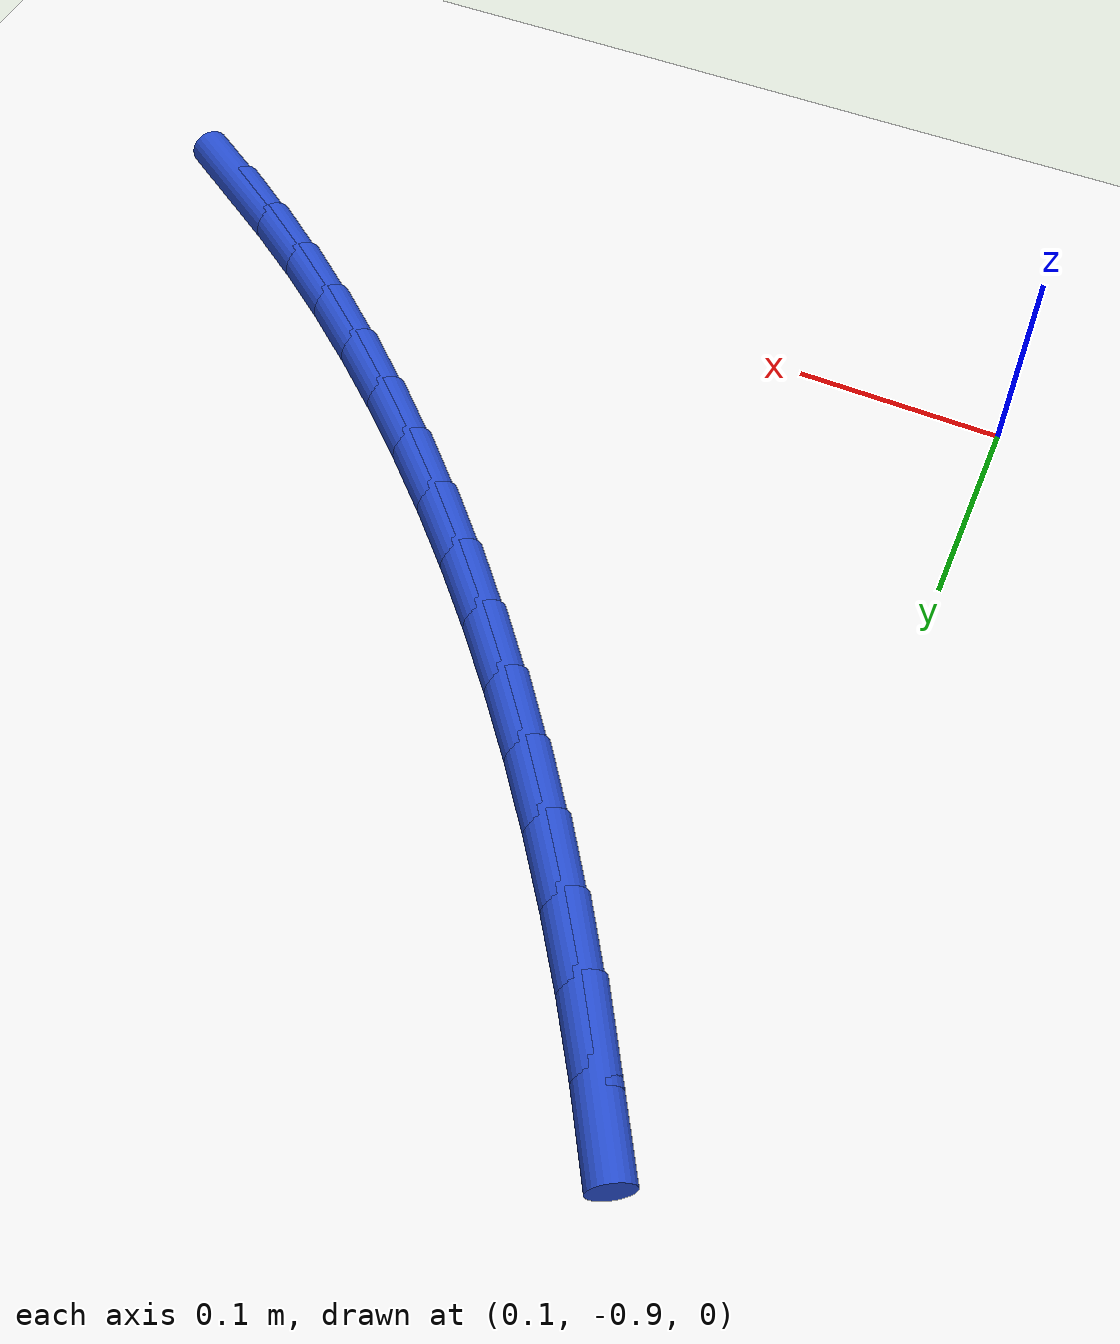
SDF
<sdf version="1.6">
 <world name="default">
  <model name="ground_plane">
   <static>1</static>
   <link name="link">
    <collision name="collision">
     <geometry><plane><normal>0 0 1</normal><size>100 100</size></plane></geometry>
     <surface><friction><ode><mu>100</mu><mu2>50</mu2></ode></friction></surface>
    </collision>
    <visual name="visual">
     <cast_shadows>0</cast_shadows>
     <geometry><plane><normal>0 0 1</normal><size>100 100</size></plane></geometry>
     <material>
      <script><uri>file://media/materials/scripts/gazebo.material</uri><name>Gazebo/WhiteGlow</name></script>
     </material>
    </visual>
   </link>
  </model>
  <model name="line">
   <link name="link_169">
    <pose>0.5124418676224222 -0.8979811106044088 0.01 0 1.57 -0.5719689835825955</pose>
    <collision name="collision">
     <geometry><cylinder><radius>0.01</radius><length>0.08</length></cylinder></geometry>
    </collision>
    <visual name="visual">
     <material>
      <script><name>Gazebo/Blue</name><uri>file://media/materials/scripts/gazebo.material</uri></script>
     </material>
     <geometry><cylinder><radius>0.01</radius><length>0.08</length></cylinder></geometry>
    </visual>
   </link>
   <link name="link_170">
    <pose>0.4836759191741295 -0.8794630316423334 0.01 0 1.57 -0.6081152345805808</pose>
    <collision name="collision">
     <geometry><cylinder><radius>0.01</radius><length>0.08</length></cylinder></geometry>
    </collision>
    <visual name="visual">
     <material>
      <script><name>Gazebo/Blue</name><uri>file://media/materials/scripts/gazebo.material</uri></script>
     </material>
     <geometry><cylinder><radius>0.01</radius><length>0.08</length></cylinder></geometry>
    </visual>
   </link>
   <link name="link_171">
    <pose>0.4554651249755601 -0.8598250154016125 0.01 0 1.57 -0.6430951962035366</pose>
    <collision name="collision">
     <geometry><cylinder><radius>0.01</radius><length>0.08</length></cylinder></geometry>
    </collision>
    <visual name="visual">
     <material>
      <script><name>Gazebo/Blue</name><uri>file://media/materials/scripts/gazebo.material</uri></script>
     </material>
     <geometry><cylinder><radius>0.01</radius><length>0.08</length></cylinder></geometry>
    </visual>
   </link>
   <link name="link_172">
    <pose>0.42783473162028207 -0.8391197393098186 0.01 0 1.57 -0.6769945499991343</pose>
    <collision name="collision">
     <geometry><cylinder><radius>0.01</radius><length>0.08</length></cylinder></geometry>
    </collision>
    <visual name="visual">
     <material>
      <script><name>Gazebo/Blue</name><uri>file://media/materials/scripts/gazebo.material</uri></script>
     </material>
     <geometry><cylinder><radius>0.01</radius><length>0.08</length></cylinder></geometry>
    </visual>
   </link>
   <link name="link_173">
    <pose>0.4008099857018636 -0.8173998807945251 0.01 0 1.57 -0.7099017471498942</pose>
    <collision name="collision">
     <geometry><cylinder><radius>0.01</radius><length>0.08</length></cylinder></geometry>
    </collision>
    <visual name="visual">
     <material>
      <script><name>Gazebo/Blue</name><uri>file://media/materials/scripts/gazebo.material</uri></script>
     </material>
     <geometry><cylinder><radius>0.01</radius><length>0.08</length></cylinder></geometry>
    </visual>
   </link>
   <link name="link_174">
    <pose>0.37441613381387323 -0.7947181172833057 0.01 0 1.57 -0.7419069217221582</pose>
    <collision name="collision">
     <geometry><cylinder><radius>0.01</radius><length>0.08</length></cylinder></geometry>
    </collision>
    <visual name="visual">
     <material>
      <script><name>Gazebo/Blue</name><uri>file://media/materials/scripts/gazebo.material</uri></script>
     </material>
     <geometry><cylinder><radius>0.01</radius><length>0.08</length></cylinder></geometry>
    </visual>
   </link>
   <link name="link_175">
    <pose>0.3486784225498792 -0.7711271262037327 0.01 0 1.57 -0.7731011006079083</pose>
    <collision name="collision">
     <geometry><cylinder><radius>0.01</radius><length>0.08</length></cylinder></geometry>
    </collision>
    <visual name="visual">
     <material>
      <script><name>Gazebo/Blue</name><uri>file://media/materials/scripts/gazebo.material</uri></script>
     </material>
     <geometry><cylinder><radius>0.01</radius><length>0.08</length></cylinder></geometry>
    </visual>
   </link>
   <link name="link_176">
    <pose>0.3236220985034499 -0.7466795849833804 0.01 0 1.57 -0.8035756696206334</pose>
    <collision name="collision">
     <geometry><cylinder><radius>0.01</radius><length>0.08</length></cylinder></geometry>
    </collision>
    <visual name="visual">
     <material>
      <script><name>Gazebo/Blue</name><uri>file://media/materials/scripts/gazebo.material</uri></script>
     </material>
     <geometry><cylinder><radius>0.01</radius><length>0.08</length></cylinder></geometry>
    </visual>
   </link>
   <link name="link_177">
    <pose>0.2992724082681537 -0.7214281710498213 0.01 0 1.57 -0.8334220576419206</pose>
    <collision name="collision">
     <geometry><cylinder><radius>0.01</radius><length>0.08</length></cylinder></geometry>
    </collision>
    <visual name="visual">
     <material>
      <script><name>Gazebo/Blue</name><uri>file://media/materials/scripts/gazebo.material</uri></script>
     </material>
     <geometry><cylinder><radius>0.01</radius><length>0.08</length></cylinder></geometry>
    </visual>
   </link>
   <link name="link_178">
    <pose>0.275654598437559 -0.6954255618306286 0.01 0 1.57 -0.8627316046489398</pose>
    <collision name="collision">
     <geometry><cylinder><radius>0.01</radius><length>0.08</length></cylinder></geometry>
    </collision>
    <visual name="visual">
     <material>
      <script><name>Gazebo/Blue</name><uri>file://media/materials/scripts/gazebo.material</uri></script>
     </material>
     <geometry><cylinder><radius>0.01</radius><length>0.08</length></cylinder></geometry>
    </visual>
   </link>
   <link name="link_179">
    <pose>0.252793915605234 -0.668724434753376 0.01 0 1.57 -0.8915955840625811</pose>
    <collision name="collision">
     <geometry><cylinder><radius>0.01</radius><length>0.08</length></cylinder></geometry>
    </collision>
    <visual name="visual">
     <material>
      <script><name>Gazebo/Blue</name><uri>file://media/materials/scripts/gazebo.material</uri></script>
     </material>
     <geometry><cylinder><radius>0.01</radius><length>0.08</length></cylinder></geometry>
    </visual>
   </link>
   <link name="link_180">
    <pose>0.23071560636474708 -0.6413774672456363 0.01 0 1.57 -0.9201053545855845</pose>
    <collision name="collision">
     <geometry><cylinder><radius>0.01</radius><length>0.08</length></cylinder></geometry>
    </collision>
    <visual name="visual">
     <material>
      <script><name>Gazebo/Blue</name><uri>file://media/materials/scripts/gazebo.material</uri></script>
     </material>
     <geometry><cylinder><radius>0.01</radius><length>0.08</length></cylinder></geometry>
    </visual>
   </link>
   <link name="link_181">
    <pose>0.20944491730966655 -0.6134373367349828 0.01 0 1.57 -0.9483527895935135</pose>
    <collision name="collision">
     <geometry><cylinder><radius>0.01</radius><length>0.08</length></cylinder></geometry>
    </collision>
    <visual name="visual">
     <material>
      <script><name>Gazebo/Blue</name><uri>file://media/materials/scripts/gazebo.material</uri></script>
     </material>
     <geometry><cylinder><radius>0.01</radius><length>0.08</length></cylinder></geometry>
    </visual>
   </link>
   <link name="link_182">
    <pose>0.18900709719619802 -0.5849567135370289 0.01 0 1.57 -0.97665849889161</pose>
    <collision name="collision">
     <geometry><cylinder><radius>0.01</radius><length>0.08</length></cylinder></geometry>
    </collision>
    <visual name="visual">
     <material>
      <script><name>Gazebo/Blue</name><uri>file://media/materials/scripts/gazebo.material</uri></script>
     </material>
     <geometry><cylinder><radius>0.01</radius><length>0.08</length></cylinder></geometry>
    </visual>
   </link>
   <link name="link_183">
    <pose>0.1694303838512097 -0.5559784382318468 0.01 0 1.57 -1.005768847532218</pose>
    <collision name="collision">
     <geometry><cylinder><radius>0.01</radius><length>0.08</length></cylinder></geometry>
    </collision>
    <visual name="visual">
     <material>
      <script><name>Gazebo/Blue</name><uri>file://media/materials/scripts/gazebo.material</uri></script>
     </material>
     <geometry><cylinder><radius>0.01</radius><length>0.08</length></cylinder></geometry>
    </visual>
   </link>
   <link name="link_184">
    <pose>0.15075193518894855 -0.5265160171649513 0.01 0 1.57 -1.0358404839142672</pose>
    <collision name="collision">
     <geometry><cylinder><radius>0.01</radius><length>0.08</length></cylinder></geometry>
    </collision>
    <visual name="visual">
     <material>
      <script><name>Gazebo/Blue</name><uri>file://media/materials/scripts/gazebo.material</uri></script>
     </material>
     <geometry><cylinder><radius>0.01</radius><length>0.08</length></cylinder></geometry>
    </visual>
   </link>
  </model>
 </world>
</sdf>
